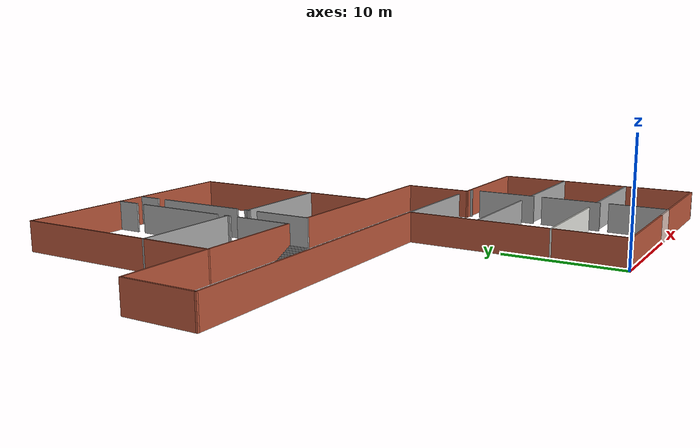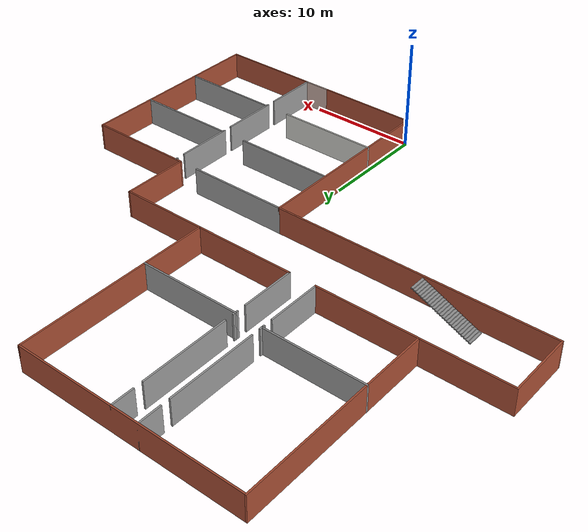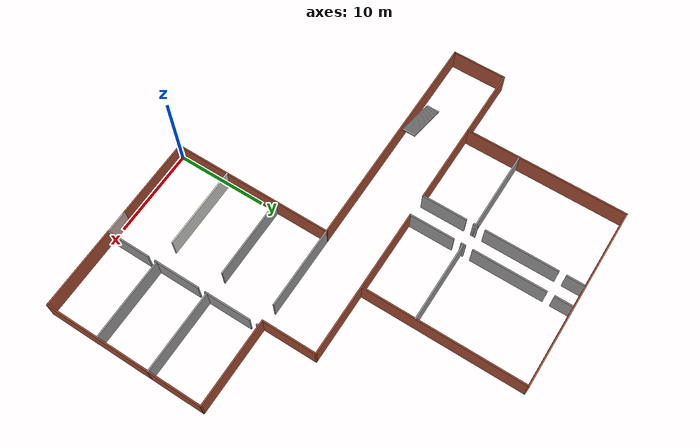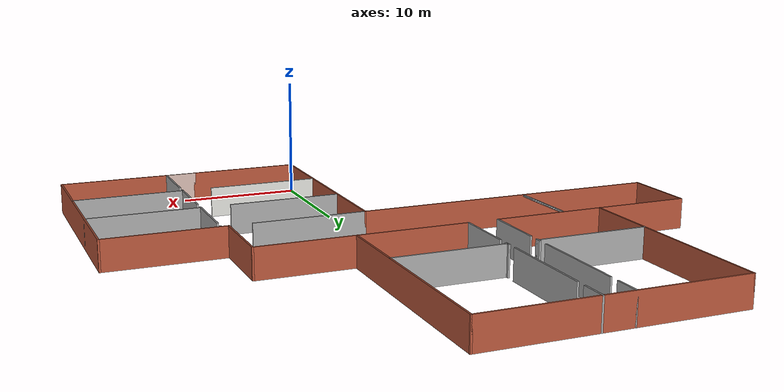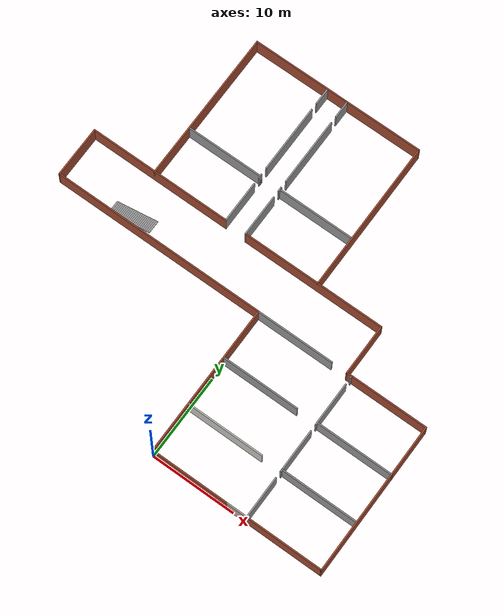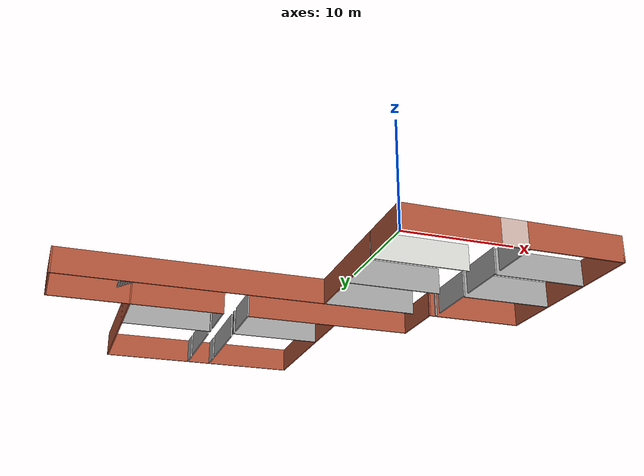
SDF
<?xml version='1.0'?>
<sdf version='1.6'>
  <model name='mrdc_empty'>
    <pose frame=''>-2.35 21 0 0 -0 0</pose>
    <link name='Stairs_2'>
      <visual name='Stairs_2_Visual_0'>
        <pose frame=''>-16.9146 -2 0.05 0 -0 1.5708</pose>
        <geometry>
          <box>
            <size>1.5 0.2148 0.1</size>
          </box>
        </geometry>
        <material>
          <script>
            <uri>file://media/materials/scripts/gazebo.material</uri>
            <name>Gazebo/Grey</name>
          </script>
          <ambient>1 1 1 1</ambient>
        </material>
        <meta>
          <layer>0</layer>
        </meta>
      </visual>
      <collision name='Stairs_2_Collision_0'>
        <geometry>
          <box>
            <size>1.5 0.2148 0.1</size>
          </box>
        </geometry>
        <pose frame=''>-16.9146 -2 0.05 0 -0 1.5708</pose>
      </collision>
      <visual name='Stairs_2_Visual_1'>
        <pose frame=''>-16.6998 -2 0.15 0 -0 1.5708</pose>
        <geometry>
          <box>
            <size>1.5 0.2148 0.1</size>
          </box>
        </geometry>
        <material>
          <script>
            <uri>file://media/materials/scripts/gazebo.material</uri>
            <name>Gazebo/Grey</name>
          </script>
          <ambient>1 1 1 1</ambient>
        </material>
        <meta>
          <layer>0</layer>
        </meta>
      </visual>
      <collision name='Stairs_2_Collision_1'>
        <geometry>
          <box>
            <size>1.5 0.2148 0.1</size>
          </box>
        </geometry>
        <pose frame=''>-16.6998 -2 0.15 0 -0 1.5708</pose>
      </collision>
      <visual name='Stairs_2_Visual_2'>
        <pose frame=''>-16.485 -2 0.25 0 -0 1.5708</pose>
        <geometry>
          <box>
            <size>1.5 0.2148 0.1</size>
          </box>
        </geometry>
        <material>
          <script>
            <uri>file://media/materials/scripts/gazebo.material</uri>
            <name>Gazebo/Grey</name>
          </script>
          <ambient>1 1 1 1</ambient>
        </material>
        <meta>
          <layer>0</layer>
        </meta>
      </visual>
      <collision name='Stairs_2_Collision_2'>
        <geometry>
          <box>
            <size>1.5 0.2148 0.1</size>
          </box>
        </geometry>
        <pose frame=''>-16.485 -2 0.25 0 -0 1.5708</pose>
      </collision>
      <visual name='Stairs_2_Visual_3'>
        <pose frame=''>-16.2702 -2 0.35 0 -0 1.5708</pose>
        <geometry>
          <box>
            <size>1.5 0.2148 0.1</size>
          </box>
        </geometry>
        <material>
          <script>
            <uri>file://media/materials/scripts/gazebo.material</uri>
            <name>Gazebo/Grey</name>
          </script>
          <ambient>1 1 1 1</ambient>
        </material>
        <meta>
          <layer>0</layer>
        </meta>
      </visual>
      <collision name='Stairs_2_Collision_3'>
        <geometry>
          <box>
            <size>1.5 0.2148 0.1</size>
          </box>
        </geometry>
        <pose frame=''>-16.2702 -2 0.35 0 -0 1.5708</pose>
      </collision>
      <visual name='Stairs_2_Visual_4'>
        <pose frame=''>-16.0554 -2 0.45 0 -0 1.5708</pose>
        <geometry>
          <box>
            <size>1.5 0.2148 0.1</size>
          </box>
        </geometry>
        <material>
          <script>
            <uri>file://media/materials/scripts/gazebo.material</uri>
            <name>Gazebo/Grey</name>
          </script>
          <ambient>1 1 1 1</ambient>
        </material>
        <meta>
          <layer>0</layer>
        </meta>
      </visual>
      <collision name='Stairs_2_Collision_4'>
        <geometry>
          <box>
            <size>1.5 0.2148 0.1</size>
          </box>
        </geometry>
        <pose frame=''>-16.0554 -2 0.45 0 -0 1.5708</pose>
      </collision>
      <visual name='Stairs_2_Visual_5'>
        <pose frame=''>-15.8406 -2 0.55 0 -0 1.5708</pose>
        <geometry>
          <box>
            <size>1.5 0.2148 0.1</size>
          </box>
        </geometry>
        <material>
          <script>
            <uri>file://media/materials/scripts/gazebo.material</uri>
            <name>Gazebo/Grey</name>
          </script>
          <ambient>1 1 1 1</ambient>
        </material>
        <meta>
          <layer>0</layer>
        </meta>
      </visual>
      <collision name='Stairs_2_Collision_5'>
        <geometry>
          <box>
            <size>1.5 0.2148 0.1</size>
          </box>
        </geometry>
        <pose frame=''>-15.8406 -2 0.55 0 -0 1.5708</pose>
      </collision>
      <visual name='Stairs_2_Visual_6'>
        <pose frame=''>-15.6258 -2 0.65 0 -0 1.5708</pose>
        <geometry>
          <box>
            <size>1.5 0.2148 0.1</size>
          </box>
        </geometry>
        <material>
          <script>
            <uri>file://media/materials/scripts/gazebo.material</uri>
            <name>Gazebo/Grey</name>
          </script>
          <ambient>1 1 1 1</ambient>
        </material>
        <meta>
          <layer>0</layer>
        </meta>
      </visual>
      <collision name='Stairs_2_Collision_6'>
        <geometry>
          <box>
            <size>1.5 0.2148 0.1</size>
          </box>
        </geometry>
        <pose frame=''>-15.6258 -2 0.65 0 -0 1.5708</pose>
      </collision>
      <visual name='Stairs_2_Visual_7'>
        <pose frame=''>-15.411 -2 0.75 0 -0 1.5708</pose>
        <geometry>
          <box>
            <size>1.5 0.2148 0.1</size>
          </box>
        </geometry>
        <material>
          <script>
            <uri>file://media/materials/scripts/gazebo.material</uri>
            <name>Gazebo/Grey</name>
          </script>
          <ambient>1 1 1 1</ambient>
        </material>
        <meta>
          <layer>0</layer>
        </meta>
      </visual>
      <collision name='Stairs_2_Collision_7'>
        <geometry>
          <box>
            <size>1.5 0.2148 0.1</size>
          </box>
        </geometry>
        <pose frame=''>-15.411 -2 0.75 0 -0 1.5708</pose>
      </collision>
      <visual name='Stairs_2_Visual_8'>
        <pose frame=''>-15.1962 -2 0.85 0 -0 1.5708</pose>
        <geometry>
          <box>
            <size>1.5 0.2148 0.1</size>
          </box>
        </geometry>
        <material>
          <script>
            <uri>file://media/materials/scripts/gazebo.material</uri>
            <name>Gazebo/Grey</name>
          </script>
          <ambient>1 1 1 1</ambient>
        </material>
        <meta>
          <layer>0</layer>
        </meta>
      </visual>
      <collision name='Stairs_2_Collision_8'>
        <geometry>
          <box>
            <size>1.5 0.2148 0.1</size>
          </box>
        </geometry>
        <pose frame=''>-15.1962 -2 0.85 0 -0 1.5708</pose>
      </collision>
      <visual name='Stairs_2_Visual_9'>
        <pose frame=''>-14.9814 -2 0.95 0 -0 1.5708</pose>
        <geometry>
          <box>
            <size>1.5 0.2148 0.1</size>
          </box>
        </geometry>
        <material>
          <script>
            <uri>file://media/materials/scripts/gazebo.material</uri>
            <name>Gazebo/Grey</name>
          </script>
          <ambient>1 1 1 1</ambient>
        </material>
        <meta>
          <layer>0</layer>
        </meta>
      </visual>
      <collision name='Stairs_2_Collision_9'>
        <geometry>
          <box>
            <size>1.5 0.2148 0.1</size>
          </box>
        </geometry>
        <pose frame=''>-14.9814 -2 0.95 0 -0 1.5708</pose>
      </collision>
      <visual name='Stairs_2_Visual_10'>
        <pose frame=''>-14.7666 -2 1.05 0 -0 1.5708</pose>
        <geometry>
          <box>
            <size>1.5 0.2148 0.1</size>
          </box>
        </geometry>
        <material>
          <script>
            <uri>file://media/materials/scripts/gazebo.material</uri>
            <name>Gazebo/Grey</name>
          </script>
          <ambient>1 1 1 1</ambient>
        </material>
        <meta>
          <layer>0</layer>
        </meta>
      </visual>
      <collision name='Stairs_2_Collision_10'>
        <geometry>
          <box>
            <size>1.5 0.2148 0.1</size>
          </box>
        </geometry>
        <pose frame=''>-14.7666 -2 1.05 0 -0 1.5708</pose>
      </collision>
      <visual name='Stairs_2_Visual_11'>
        <pose frame=''>-14.5518 -2 1.15 0 -0 1.5708</pose>
        <geometry>
          <box>
            <size>1.5 0.2148 0.1</size>
          </box>
        </geometry>
        <material>
          <script>
            <uri>file://media/materials/scripts/gazebo.material</uri>
            <name>Gazebo/Grey</name>
          </script>
          <ambient>1 1 1 1</ambient>
        </material>
        <meta>
          <layer>0</layer>
        </meta>
      </visual>
      <collision name='Stairs_2_Collision_11'>
        <geometry>
          <box>
            <size>1.5 0.2148 0.1</size>
          </box>
        </geometry>
        <pose frame=''>-14.5518 -2 1.15 0 -0 1.5708</pose>
      </collision>
      <visual name='Stairs_2_Visual_12'>
        <pose frame=''>-14.337 -2 1.25 0 -0 1.5708</pose>
        <geometry>
          <box>
            <size>1.5 0.2148 0.1</size>
          </box>
        </geometry>
        <material>
          <script>
            <uri>file://media/materials/scripts/gazebo.material</uri>
            <name>Gazebo/Grey</name>
          </script>
          <ambient>1 1 1 1</ambient>
        </material>
        <meta>
          <layer>0</layer>
        </meta>
      </visual>
      <collision name='Stairs_2_Collision_12'>
        <geometry>
          <box>
            <size>1.5 0.2148 0.1</size>
          </box>
        </geometry>
        <pose frame=''>-14.337 -2 1.25 0 -0 1.5708</pose>
      </collision>
      <visual name='Stairs_2_Visual_13'>
        <pose frame=''>-14.1222 -2 1.35 0 -0 1.5708</pose>
        <geometry>
          <box>
            <size>1.5 0.2148 0.1</size>
          </box>
        </geometry>
        <material>
          <script>
            <uri>file://media/materials/scripts/gazebo.material</uri>
            <name>Gazebo/Grey</name>
          </script>
          <ambient>1 1 1 1</ambient>
        </material>
        <meta>
          <layer>0</layer>
        </meta>
      </visual>
      <collision name='Stairs_2_Collision_13'>
        <geometry>
          <box>
            <size>1.5 0.2148 0.1</size>
          </box>
        </geometry>
        <pose frame=''>-14.1222 -2 1.35 0 -0 1.5708</pose>
      </collision>
      <visual name='Stairs_2_Visual_14'>
        <pose frame=''>-13.9074 -2 1.45 0 -0 1.5708</pose>
        <geometry>
          <box>
            <size>1.5 0.2148 0.1</size>
          </box>
        </geometry>
        <material>
          <script>
            <uri>file://media/materials/scripts/gazebo.material</uri>
            <name>Gazebo/Grey</name>
          </script>
          <ambient>1 1 1 1</ambient>
        </material>
        <meta>
          <layer>0</layer>
        </meta>
      </visual>
      <collision name='Stairs_2_Collision_14'>
        <geometry>
          <box>
            <size>1.5 0.2148 0.1</size>
          </box>
        </geometry>
        <pose frame=''>-13.9074 -2 1.45 0 -0 1.5708</pose>
      </collision>
      <visual name='Stairs_2_Visual_15'>
        <pose frame=''>-13.6926 -2 1.55 0 -0 1.5708</pose>
        <geometry>
          <box>
            <size>1.5 0.2148 0.1</size>
          </box>
        </geometry>
        <material>
          <script>
            <uri>file://media/materials/scripts/gazebo.material</uri>
            <name>Gazebo/Grey</name>
          </script>
          <ambient>1 1 1 1</ambient>
        </material>
        <meta>
          <layer>0</layer>
        </meta>
      </visual>
      <collision name='Stairs_2_Collision_15'>
        <geometry>
          <box>
            <size>1.5 0.2148 0.1</size>
          </box>
        </geometry>
        <pose frame=''>-13.6926 -2 1.55 0 -0 1.5708</pose>
      </collision>
      <visual name='Stairs_2_Visual_16'>
        <pose frame=''>-13.4778 -2 1.65 0 -0 1.5708</pose>
        <geometry>
          <box>
            <size>1.5 0.2148 0.1</size>
          </box>
        </geometry>
        <material>
          <script>
            <uri>file://media/materials/scripts/gazebo.material</uri>
            <name>Gazebo/Grey</name>
          </script>
          <ambient>1 1 1 1</ambient>
        </material>
        <meta>
          <layer>0</layer>
        </meta>
      </visual>
      <collision name='Stairs_2_Collision_16'>
        <geometry>
          <box>
            <size>1.5 0.2148 0.1</size>
          </box>
        </geometry>
        <pose frame=''>-13.4778 -2 1.65 0 -0 1.5708</pose>
      </collision>
      <visual name='Stairs_2_Visual_17'>
        <pose frame=''>-13.263 -2 1.75 0 -0 1.5708</pose>
        <geometry>
          <box>
            <size>1.5 0.2148 0.1</size>
          </box>
        </geometry>
        <material>
          <script>
            <uri>file://media/materials/scripts/gazebo.material</uri>
            <name>Gazebo/Grey</name>
          </script>
          <ambient>1 1 1 1</ambient>
        </material>
        <meta>
          <layer>0</layer>
        </meta>
      </visual>
      <collision name='Stairs_2_Collision_17'>
        <geometry>
          <box>
            <size>1.5 0.2148 0.1</size>
          </box>
        </geometry>
        <pose frame=''>-13.263 -2 1.75 0 -0 1.5708</pose>
      </collision>
      <visual name='Stairs_2_Visual_18'>
        <pose frame=''>-13.0482 -2 1.85 0 -0 1.5708</pose>
        <geometry>
          <box>
            <size>1.5 0.2148 0.1</size>
          </box>
        </geometry>
        <material>
          <script>
            <uri>file://media/materials/scripts/gazebo.material</uri>
            <name>Gazebo/Grey</name>
          </script>
          <ambient>1 1 1 1</ambient>
        </material>
        <meta>
          <layer>0</layer>
        </meta>
      </visual>
      <collision name='Stairs_2_Collision_18'>
        <geometry>
          <box>
            <size>1.5 0.2148 0.1</size>
          </box>
        </geometry>
        <pose frame=''>-13.0482 -2 1.85 0 -0 1.5708</pose>
      </collision>
      <visual name='Stairs_2_Visual_19'>
        <pose frame=''>-12.8334 -2 1.95 0 -0 1.5708</pose>
        <geometry>
          <box>
            <size>1.5 0.2148 0.1</size>
          </box>
        </geometry>
        <material>
          <script>
            <uri>file://media/materials/scripts/gazebo.material</uri>
            <name>Gazebo/Grey</name>
          </script>
          <ambient>1 1 1 1</ambient>
        </material>
        <meta>
          <layer>0</layer>
        </meta>
      </visual>
      <collision name='Stairs_2_Collision_19'>
        <geometry>
          <box>
            <size>1.5 0.2148 0.1</size>
          </box>
        </geometry>
        <pose frame=''>-12.8334 -2 1.95 0 -0 1.5708</pose>
      </collision>
      <visual name='Stairs_2_Visual_20'>
        <pose frame=''>-12.6186 -2 2.05 0 -0 1.5708</pose>
        <geometry>
          <box>
            <size>1.5 0.2148 0.1</size>
          </box>
        </geometry>
        <material>
          <script>
            <uri>file://media/materials/scripts/gazebo.material</uri>
            <name>Gazebo/Grey</name>
          </script>
          <ambient>1 1 1 1</ambient>
        </material>
        <meta>
          <layer>0</layer>
        </meta>
      </visual>
      <collision name='Stairs_2_Collision_20'>
        <geometry>
          <box>
            <size>1.5 0.2148 0.1</size>
          </box>
        </geometry>
        <pose frame=''>-12.6186 -2 2.05 0 -0 1.5708</pose>
      </collision>
      <visual name='Stairs_2_Visual_21'>
        <pose frame=''>-12.4038 -2 2.15 0 -0 1.5708</pose>
        <geometry>
          <box>
            <size>1.5 0.2148 0.1</size>
          </box>
        </geometry>
        <material>
          <script>
            <uri>file://media/materials/scripts/gazebo.material</uri>
            <name>Gazebo/Grey</name>
          </script>
          <ambient>1 1 1 1</ambient>
        </material>
        <meta>
          <layer>0</layer>
        </meta>
      </visual>
      <collision name='Stairs_2_Collision_21'>
        <geometry>
          <box>
            <size>1.5 0.2148 0.1</size>
          </box>
        </geometry>
        <pose frame=''>-12.4038 -2 2.15 0 -0 1.5708</pose>
      </collision>
      <visual name='Stairs_2_Visual_22'>
        <pose frame=''>-12.189 -2 2.25 0 -0 1.5708</pose>
        <geometry>
          <box>
            <size>1.5 0.2148 0.1</size>
          </box>
        </geometry>
        <material>
          <script>
            <uri>file://media/materials/scripts/gazebo.material</uri>
            <name>Gazebo/Grey</name>
          </script>
          <ambient>1 1 1 1</ambient>
        </material>
        <meta>
          <layer>0</layer>
        </meta>
      </visual>
      <collision name='Stairs_2_Collision_22'>
        <geometry>
          <box>
            <size>1.5 0.2148 0.1</size>
          </box>
        </geometry>
        <pose frame=''>-12.189 -2 2.25 0 -0 1.5708</pose>
      </collision>
      <visual name='Stairs_2_Visual_23'>
        <pose frame=''>-11.9742 -2 2.35 0 -0 1.5708</pose>
        <geometry>
          <box>
            <size>1.5 0.2148 0.1</size>
          </box>
        </geometry>
        <material>
          <script>
            <uri>file://media/materials/scripts/gazebo.material</uri>
            <name>Gazebo/Grey</name>
          </script>
          <ambient>1 1 1 1</ambient>
        </material>
        <meta>
          <layer>0</layer>
        </meta>
      </visual>
      <collision name='Stairs_2_Collision_23'>
        <geometry>
          <box>
            <size>1.5 0.2148 0.1</size>
          </box>
        </geometry>
        <pose frame=''>-11.9742 -2 2.35 0 -0 1.5708</pose>
      </collision>
      <visual name='Stairs_2_Visual_24'>
        <pose frame=''>-11.7594 -2 2.45 0 -0 1.5708</pose>
        <geometry>
          <box>
            <size>1.5 0.2148 0.1</size>
          </box>
        </geometry>
        <material>
          <script>
            <uri>file://media/materials/scripts/gazebo.material</uri>
            <name>Gazebo/Grey</name>
          </script>
          <ambient>1 1 1 1</ambient>
        </material>
        <meta>
          <layer>0</layer>
        </meta>
      </visual>
      <collision name='Stairs_2_Collision_24'>
        <geometry>
          <box>
            <size>1.5 0.2148 0.1</size>
          </box>
        </geometry>
        <pose frame=''>-11.7594 -2 2.45 0 -0 1.5708</pose>
      </collision>
    </link>
    <link name='Wall_11'>
      <collision name='Wall_11_Collision'>
        <geometry>
          <box>
            <size>18.15 0.15 2.5</size>
          </box>
        </geometry>
        <pose frame=''>0 0 1.25 0 -0 0</pose>
      </collision>
      <visual name='Wall_11_Visual'>
        <pose frame=''>0 0 1.25 0 -0 0</pose>
        <geometry>
          <box>
            <size>18.15 0.15 2.5</size>
          </box>
        </geometry>
        <material>
          <script>
            <uri>file://media/materials/scripts/gazebo.material</uri>
            <name>Gazebo/Bricks</name>
          </script>
          <ambient>1 1 1 1</ambient>
        </material>
        <meta>
          <layer>0</layer>
        </meta>
      </visual>
      <pose frame=''>23.05 -12 0 0 -0 1.5708</pose>
    </link>
    <link name='Wall_13'>
      <collision name='Wall_13_Collision'>
        <geometry>
          <box>
            <size>9.85 0.15 2.5</size>
          </box>
        </geometry>
        <pose frame=''>0 0 1.25 0 -0 0</pose>
      </collision>
      <visual name='Wall_13_Visual'>
        <pose frame=''>0 0 1.25 0 -0 0</pose>
        <geometry>
          <box>
            <size>9.85 0.15 2.5</size>
          </box>
        </geometry>
        <material>
          <script>
            <uri>file://media/materials/scripts/gazebo.material</uri>
            <name>Gazebo/Bricks</name>
          </script>
          <ambient>1 1 1 1</ambient>
        </material>
        <meta>
          <layer>0</layer>
        </meta>
      </visual>
      <pose frame=''>18.2 -3 0 0 -0 3.14159</pose>
    </link>
    <link name='Wall_17'>
      <collision name='Wall_17_Collision'>
        <geometry>
          <box>
            <size>9.25 0.15 2.5</size>
          </box>
        </geometry>
        <pose frame=''>0 0 1.25 0 -0 0</pose>
      </collision>
      <visual name='Wall_17_Visual'>
        <pose frame=''>0 0 1.25 0 -0 0</pose>
        <geometry>
          <box>
            <size>9.25 0.15 2.5</size>
          </box>
        </geometry>
        <material>
          <script>
            <uri>file://media/materials/scripts/gazebo.material</uri>
            <name>Gazebo/CeilingTiled</name>
          </script>
          <ambient>1 1 1 1</ambient>
        </material>
        <meta>
          <layer>0</layer>
        </meta>
      </visual>
      <pose frame=''>6.9 -15 0 0 -0 0</pose>
    </link>
    <link name='Wall_19'>
      <collision name='Wall_19_Collision'>
        <geometry>
          <box>
            <size>9.25 0.15 2.5</size>
          </box>
        </geometry>
        <pose frame=''>0 0 1.25 0 -0 0</pose>
      </collision>
      <visual name='Wall_19_Visual'>
        <pose frame=''>0 0 1.25 0 -0 0</pose>
        <geometry>
          <box>
            <size>9.25 0.15 2.5</size>
          </box>
        </geometry>
        <material>
          <script>
            <uri>file://media/materials/scripts/gazebo.material</uri>
            <name>Gazebo/Grey</name>
          </script>
          <ambient>1 1 1 1</ambient>
        </material>
        <meta>
          <layer>0</layer>
        </meta>
      </visual>
      <pose frame=''>18.5 -15 0 0 -0 0</pose>
    </link>
    <link name='Wall_2'>
      <collision name='Wall_2_Collision'>
        <geometry>
          <box>
            <size>9.25 0.15 2.5</size>
          </box>
        </geometry>
        <pose frame=''>0 0 1.25 0 -0 0</pose>
      </collision>
      <visual name='Wall_2_Visual'>
        <pose frame=''>0 0 1.25 0 -0 0</pose>
        <geometry>
          <box>
            <size>9.25 0.15 2.5</size>
          </box>
        </geometry>
        <material>
          <script>
            <uri>file://media/materials/scripts/gazebo.material</uri>
            <name>Gazebo/Bricks</name>
          </script>
          <ambient>1 1 1 1</ambient>
        </material>
        <meta>
          <layer>0</layer>
        </meta>
      </visual>
      <pose frame=''>6.9 -21 0 0 -0 0</pose>
    </link>
    <link name='Wall_21'>
      <collision name='Wall_21_Collision'>
        <geometry>
          <box>
            <size>9.25 0.15 2.5</size>
          </box>
        </geometry>
        <pose frame=''>0 0 1.25 0 -0 0</pose>
      </collision>
      <visual name='Wall_21_Visual'>
        <pose frame=''>0 0 1.25 0 -0 0</pose>
        <geometry>
          <box>
            <size>9.25 0.15 2.5</size>
          </box>
        </geometry>
        <material>
          <script>
            <uri>file://media/materials/scripts/gazebo.material</uri>
            <name>Gazebo/Grey</name>
          </script>
          <ambient>1 1 1 1</ambient>
        </material>
        <meta>
          <layer>0</layer>
        </meta>
      </visual>
      <pose frame=''>6.9 -9 0 0 -0 0</pose>
    </link>
    <link name='Wall_23'>
      <collision name='Wall_23_Collision'>
        <geometry>
          <box>
            <size>9.25 0.15 2.5</size>
          </box>
        </geometry>
        <pose frame=''>0 0 1.25 0 -0 0</pose>
      </collision>
      <visual name='Wall_23_Visual'>
        <pose frame=''>0 0 1.25 0 -0 0</pose>
        <geometry>
          <box>
            <size>9.25 0.15 2.5</size>
          </box>
        </geometry>
        <material>
          <script>
            <uri>file://media/materials/scripts/gazebo.material</uri>
            <name>Gazebo/Grey</name>
          </script>
          <ambient>1 1 1 1</ambient>
        </material>
        <meta>
          <layer>0</layer>
        </meta>
      </visual>
      <pose frame=''>18.5 -9 0 0 -0 0</pose>
    </link>
    <link name='Wall_27'>
      <collision name='Wall_27_Collision'>
        <geometry>
          <box>
            <size>0.35 0.15 2.5</size>
          </box>
        </geometry>
        <pose frame=''>0 0 1.25 0 -0 0</pose>
      </collision>
      <visual name='Wall_27_Visual'>
        <pose frame=''>0 0 1.25 0 -0 0</pose>
        <geometry>
          <box>
            <size>0.35 0.15 2.5</size>
          </box>
        </geometry>
        <material>
          <script>
            <uri>file://media/materials/scripts/gazebo.material</uri>
            <name>Gazebo/Grey</name>
          </script>
          <ambient>1 1 1 1</ambient>
        </material>
        <meta>
          <layer>0</layer>
        </meta>
      </visual>
      <pose frame=''>13.95 -3.1 0 0 -0 -1.5708</pose>
    </link>
    <link name='Wall_29'>
      <collision name='Wall_29_Collision'>
        <geometry>
          <box>
            <size>5.25 0.15 2.5</size>
          </box>
        </geometry>
        <pose frame=''>0 0 1.25 0 -0 0</pose>
      </collision>
      <visual name='Wall_29_Visual'>
        <pose frame=''>0 0 1.25 0 -0 0</pose>
        <geometry>
          <box>
            <size>5.25 0.15 2.5</size>
          </box>
        </geometry>
        <material>
          <script>
            <uri>file://media/materials/scripts/gazebo.material</uri>
            <name>Gazebo/Grey</name>
          </script>
          <ambient>1 1 1 1</ambient>
        </material>
        <meta>
          <layer>0</layer>
        </meta>
      </visual>
      <pose frame=''>13.95 -6.65 0 0 -0 -1.5708</pose>
    </link>
    <link name='Wall_31'>
      <collision name='Wall_31_Collision'>
        <geometry>
          <box>
            <size>5.25 0.15 2.5</size>
          </box>
        </geometry>
        <pose frame=''>0 0 1.25 0 -0 0</pose>
      </collision>
      <visual name='Wall_31_Visual'>
        <pose frame=''>0 0 1.25 0 -0 0</pose>
        <geometry>
          <box>
            <size>5.25 0.15 2.5</size>
          </box>
        </geometry>
        <material>
          <script>
            <uri>file://media/materials/scripts/gazebo.material</uri>
            <name>Gazebo/Grey</name>
          </script>
          <ambient>1 1 1 1</ambient>
        </material>
        <meta>
          <layer>0</layer>
        </meta>
      </visual>
      <pose frame=''>13.95 -12.65 0 0 -0 -1.5708</pose>
    </link>
    <link name='Wall_33'>
      <collision name='Wall_33_Collision'>
        <geometry>
          <box>
            <size>5.05 0.15 2.5</size>
          </box>
        </geometry>
        <pose frame=''>0 0 1.25 0 -0 0</pose>
      </collision>
      <visual name='Wall_33_Visual'>
        <pose frame=''>0 0 1.25 0 -0 0</pose>
        <geometry>
          <box>
            <size>5.05 0.15 2.5</size>
          </box>
        </geometry>
        <material>
          <script>
            <uri>file://media/materials/scripts/gazebo.material</uri>
            <name>Gazebo/Grey</name>
          </script>
          <ambient>1 1 1 1</ambient>
        </material>
        <meta>
          <layer>0</layer>
        </meta>
      </visual>
      <pose frame=''>13.95 -18.55 0 0 -0 1.5708</pose>
    </link>
    <link name='Wall_37'>
      <collision name='Wall_37_Collision'>
        <geometry>
          <box>
            <size>9.25 0.15 2.5</size>
          </box>
        </geometry>
        <pose frame=''>0 0 1.25 0 -0 0</pose>
      </collision>
      <visual name='Wall_37_Visual'>
        <pose frame=''>0 0 1.25 0 -0 0</pose>
        <geometry>
          <box>
            <size>9.25 0.15 2.5</size>
          </box>
        </geometry>
        <material>
          <script>
            <uri>file://media/materials/scripts/gazebo.material</uri>
            <name>Gazebo/Grey</name>
          </script>
          <ambient>1 1 1 1</ambient>
        </material>
        <meta>
          <layer>0</layer>
        </meta>
      </visual>
      <pose frame=''>6.9 -3 0 0 -0 0</pose>
    </link>
    <link name='Wall_4'>
      <collision name='Wall_4_Collision'>
        <geometry>
          <box>
            <size>2.65 0.15 2.5</size>
          </box>
        </geometry>
        <pose frame=''>0 0 1.25 0 -0 0</pose>
      </collision>
      <visual name='Wall_4_Visual'>
        <pose frame=''>0 0 1.25 0 -0 0</pose>
        <geometry>
          <box>
            <size>2.65 0.15 2.5</size>
          </box>
        </geometry>
        <material>
          <script>
            <uri>file://media/materials/scripts/gazebo.material</uri>
            <name>Gazebo/Grey</name>
          </script>
          <ambient>0.760784 0.662745 0.627451 1</ambient>
        </material>
        <meta>
          <layer>0</layer>
        </meta>
      </visual>
      <pose frame=''>12.7 -21 0 0 -0 0</pose>
    </link>
    <link name='Wall_41'>
      <collision name='Wall_41_Collision'>
        <geometry>
          <box>
            <size>6.15 0.15 2.5</size>
          </box>
        </geometry>
        <pose frame=''>0 0 1.25 0 -0 0</pose>
      </collision>
      <visual name='Wall_41_Visual'>
        <pose frame=''>0 0 1.25 0 -0 0</pose>
        <geometry>
          <box>
            <size>6.15 0.15 2.5</size>
          </box>
        </geometry>
        <material>
          <script>
            <uri>file://media/materials/scripts/gazebo.material</uri>
            <name>Gazebo/Bricks</name>
          </script>
          <ambient>1 1 1 1</ambient>
        </material>
        <meta>
          <layer>0</layer>
        </meta>
      </visual>
      <pose frame=''>13.35 0 0 0 -0 1.5708</pose>
    </link>
    <link name='Wall_43'>
      <collision name='Wall_43_Collision'>
        <geometry>
          <box>
            <size>25.55 0.15 2.5</size>
          </box>
        </geometry>
        <pose frame=''>0 0 1.25 0 -0 0</pose>
      </collision>
      <visual name='Wall_43_Visual'>
        <pose frame=''>0 0 1.25 0 -0 0</pose>
        <geometry>
          <box>
            <size>25.55 0.15 2.5</size>
          </box>
        </geometry>
        <material>
          <script>
            <uri>file://media/materials/scripts/gazebo.material</uri>
            <name>Gazebo/Bricks</name>
          </script>
          <ambient>1 1 1 1</ambient>
        </material>
        <meta>
          <layer>0</layer>
        </meta>
      </visual>
      <pose frame=''>-10.35 -3 0 0 -0 3.14159</pose>
    </link>
    <link name='Wall_45'>
      <collision name='Wall_45_Collision'>
        <geometry>
          <box>
            <size>17.15 0.15 2.5</size>
          </box>
        </geometry>
        <pose frame=''>0 0 1.25 0 -0 0</pose>
      </collision>
      <visual name='Wall_45_Visual'>
        <pose frame=''>0 0 1.25 0 -0 0</pose>
        <geometry>
          <box>
            <size>17.15 0.15 2.5</size>
          </box>
        </geometry>
        <material>
          <script>
            <uri>file://media/materials/scripts/gazebo.material</uri>
            <name>Gazebo/Bricks</name>
          </script>
          <ambient>1 1 1 1</ambient>
        </material>
        <meta>
          <layer>0</layer>
        </meta>
      </visual>
      <pose frame=''>4.85 3 0 0 -0 3.14159</pose>
    </link>
    <link name='Wall_47'>
      <collision name='Wall_47_Collision'>
        <geometry>
          <box>
            <size>18.15 0.15 2.5</size>
          </box>
        </geometry>
        <pose frame=''>0 0 1.25 0 -0 0</pose>
      </collision>
      <visual name='Wall_47_Visual'>
        <pose frame=''>0 0 1.25 0 -0 0</pose>
        <geometry>
          <box>
            <size>18.15 0.15 2.5</size>
          </box>
        </geometry>
        <material>
          <script>
            <uri>file://media/materials/scripts/gazebo.material</uri>
            <name>Gazebo/Bricks</name>
          </script>
          <ambient>1 1 1 1</ambient>
        </material>
        <meta>
          <layer>0</layer>
        </meta>
      </visual>
      <pose frame=''>5.45 12 0 0 -0 1.5708</pose>
    </link>
    <link name='Wall_49'>
      <collision name='Wall_49_Collision'>
        <geometry>
          <box>
            <size>17.05 0.15 2.5</size>
          </box>
        </geometry>
        <pose frame=''>0 0 1.25 0 -0 0</pose>
      </collision>
      <visual name='Wall_49_Visual'>
        <pose frame=''>0 0 1.25 0 -0 0</pose>
        <geometry>
          <box>
            <size>17.05 0.15 2.5</size>
          </box>
        </geometry>
        <material>
          <script>
            <uri>file://media/materials/scripts/gazebo.material</uri>
            <name>Gazebo/Bricks</name>
          </script>
          <ambient>1 1 1 1</ambient>
        </material>
        <meta>
          <layer>0</layer>
        </meta>
      </visual>
      <pose frame=''>-14.6 3 0 0 -0 3.14159</pose>
    </link>
    <link name='Wall_51'>
      <collision name='Wall_51_Collision'>
        <geometry>
          <box>
            <size>18.15 0.15 2.5</size>
          </box>
        </geometry>
        <pose frame=''>0 0 1.25 0 -0 0</pose>
      </collision>
      <visual name='Wall_51_Visual'>
        <pose frame=''>0 0 1.25 0 -0 0</pose>
        <geometry>
          <box>
            <size>18.15 0.15 2.5</size>
          </box>
        </geometry>
        <material>
          <script>
            <uri>file://media/materials/scripts/gazebo.material</uri>
            <name>Gazebo/Bricks</name>
          </script>
          <ambient>1 1 1 1</ambient>
        </material>
        <meta>
          <layer>0</layer>
        </meta>
      </visual>
      <pose frame=''>-15.25 12 0 0 -0 1.5708</pose>
    </link>
    <link name='Wall_53'>
      <collision name='Wall_53_Collision'>
        <geometry>
          <box>
            <size>20.85 0.15 2.5</size>
          </box>
        </geometry>
        <pose frame=''>0 0 1.25 0 -0 0</pose>
      </collision>
      <visual name='Wall_53_Visual'>
        <pose frame=''>0 0 1.25 0 -0 0</pose>
        <geometry>
          <box>
            <size>20.85 0.15 2.5</size>
          </box>
        </geometry>
        <material>
          <script>
            <uri>file://media/materials/scripts/gazebo.material</uri>
            <name>Gazebo/Bricks</name>
          </script>
          <ambient>1 1 1 1</ambient>
        </material>
        <meta>
          <layer>0</layer>
        </meta>
      </visual>
      <pose frame=''>-4.9 21 0 0 -0 0</pose>
    </link>
    <link name='Wall_55'>
      <collision name='Wall_55_Collision'>
        <geometry>
          <box>
            <size>9.25 0.15 2.5</size>
          </box>
        </geometry>
        <pose frame=''>0 0 1.25 0 -0 0</pose>
      </collision>
      <visual name='Wall_55_Visual'>
        <pose frame=''>0 0 1.25 0 -0 0</pose>
        <geometry>
          <box>
            <size>9.25 0.15 2.5</size>
          </box>
        </geometry>
        <material>
          <script>
            <uri>file://media/materials/scripts/gazebo.material</uri>
            <name>Gazebo/Grey</name>
          </script>
          <ambient>1 1 1 1</ambient>
        </material>
        <meta>
          <layer>0</layer>
        </meta>
      </visual>
      <pose frame=''>-10.7 9 0 0 -0 0</pose>
    </link>
    <link name='Wall_57'>
      <collision name='Wall_57_Collision'>
        <geometry>
          <box>
            <size>9.25 0.15 2.5</size>
          </box>
        </geometry>
        <pose frame=''>0 0 1.25 0 -0 0</pose>
      </collision>
      <visual name='Wall_57_Visual'>
        <pose frame=''>0 0 1.25 0 -0 0</pose>
        <geometry>
          <box>
            <size>9.25 0.15 2.5</size>
          </box>
        </geometry>
        <material>
          <script>
            <uri>file://media/materials/scripts/gazebo.material</uri>
            <name>Gazebo/Grey</name>
          </script>
          <ambient>1 1 1 1</ambient>
        </material>
        <meta>
          <layer>0</layer>
        </meta>
      </visual>
      <pose frame=''>0.899999 9 0 0 -0 0</pose>
    </link>
    <link name='Wall_59'>
      <collision name='Wall_59_Collision'>
        <geometry>
          <box>
            <size>5.05 0.15 2.5</size>
          </box>
        </geometry>
        <pose frame=''>0 0 1.25 0 -0 0</pose>
      </collision>
      <visual name='Wall_59_Visual'>
        <pose frame=''>0 0 1.25 0 -0 0</pose>
        <geometry>
          <box>
            <size>5.05 0.15 2.5</size>
          </box>
        </geometry>
        <material>
          <script>
            <uri>file://media/materials/scripts/gazebo.material</uri>
            <name>Gazebo/Grey</name>
          </script>
          <ambient>1 1 1 1</ambient>
        </material>
        <meta>
          <layer>0</layer>
        </meta>
      </visual>
      <pose frame=''>-3.65 5.45 0 0 -0 -1.5708</pose>
    </link>
    <link name='Wall_61'>
      <collision name='Wall_61_Collision'>
        <geometry>
          <box>
            <size>5.05 0.15 2.5</size>
          </box>
        </geometry>
        <pose frame=''>0 0 1.25 0 -0 0</pose>
      </collision>
      <visual name='Wall_61_Visual'>
        <pose frame=''>0 0 1.25 0 -0 0</pose>
        <geometry>
          <box>
            <size>5.05 0.15 2.5</size>
          </box>
        </geometry>
        <material>
          <script>
            <uri>file://media/materials/scripts/gazebo.material</uri>
            <name>Gazebo/Grey</name>
          </script>
          <ambient>1 1 1 1</ambient>
        </material>
        <meta>
          <layer>0</layer>
        </meta>
      </visual>
      <pose frame=''>-6.15 5.45 0 0 -0 1.5708</pose>
    </link>
    <link name='Wall_63'>
      <collision name='Wall_63_Collision'>
        <geometry>
          <box>
            <size>0.55 0.15 2.5</size>
          </box>
        </geometry>
        <pose frame=''>0 0 1.25 0 -0 0</pose>
      </collision>
      <visual name='Wall_63_Visual'>
        <pose frame=''>0 0 1.25 0 -0 0</pose>
        <geometry>
          <box>
            <size>0.55 0.15 2.5</size>
          </box>
        </geometry>
        <material>
          <script>
            <uri>file://media/materials/scripts/gazebo.material</uri>
            <name>Gazebo/Grey</name>
          </script>
          <ambient>1 1 1 1</ambient>
        </material>
        <meta>
          <layer>0</layer>
        </meta>
      </visual>
      <pose frame=''>-3.65 9 0 0 -0 1.5708</pose>
    </link>
    <link name='Wall_65'>
      <collision name='Wall_65_Collision'>
        <geometry>
          <box>
            <size>0.55 0.15 2.5</size>
          </box>
        </geometry>
        <pose frame=''>0 0 1.25 0 -0 0</pose>
      </collision>
      <visual name='Wall_65_Visual'>
        <pose frame=''>0 0 1.25 0 -0 0</pose>
        <geometry>
          <box>
            <size>0.55 0.15 2.5</size>
          </box>
        </geometry>
        <material>
          <script>
            <uri>file://media/materials/scripts/gazebo.material</uri>
            <name>Gazebo/Grey</name>
          </script>
          <ambient>1 1 1 1</ambient>
        </material>
        <meta>
          <layer>0</layer>
        </meta>
      </visual>
      <pose frame=''>-6.15 9 0 0 -0 1.5708</pose>
    </link>
    <link name='Wall_67'>
      <collision name='Wall_67_Collision'>
        <geometry>
          <box>
            <size>8.15 0.15 2.5</size>
          </box>
        </geometry>
        <pose frame=''>0 0 1.25 0 -0 0</pose>
      </collision>
      <visual name='Wall_67_Visual'>
        <pose frame=''>0 0 1.25 0 -0 0</pose>
        <geometry>
          <box>
            <size>8.15 0.15 2.5</size>
          </box>
        </geometry>
        <material>
          <script>
            <uri>file://media/materials/scripts/gazebo.material</uri>
            <name>Gazebo/Grey</name>
          </script>
          <ambient>1 1 1 1</ambient>
        </material>
        <meta>
          <layer>0</layer>
        </meta>
      </visual>
      <pose frame=''>-3.65 14.1 0 0 -0 1.5708</pose>
    </link>
    <link name='Wall_69'>
      <collision name='Wall_69_Collision'>
        <geometry>
          <box>
            <size>8.15 0.15 2.5</size>
          </box>
        </geometry>
        <pose frame=''>0 0 1.25 0 -0 0</pose>
      </collision>
      <visual name='Wall_69_Visual'>
        <pose frame=''>0 0 1.25 0 -0 0</pose>
        <geometry>
          <box>
            <size>8.15 0.15 2.5</size>
          </box>
        </geometry>
        <material>
          <script>
            <uri>file://media/materials/scripts/gazebo.material</uri>
            <name>Gazebo/Grey</name>
          </script>
          <ambient>1 1 1 1</ambient>
        </material>
        <meta>
          <layer>0</layer>
        </meta>
      </visual>
      <pose frame=''>-6.15 14.1 0 0 -0 1.5708</pose>
    </link>
    <link name='Wall_7'>
      <collision name='Wall_7_Collision'>
        <geometry>
          <box>
            <size>9.25 0.15 2.5</size>
          </box>
        </geometry>
        <pose frame=''>0 0 1.25 0 -0 0</pose>
      </collision>
      <visual name='Wall_7_Visual'>
        <pose frame=''>0 0 1.25 0 -0 0</pose>
        <geometry>
          <box>
            <size>9.25 0.15 2.5</size>
          </box>
        </geometry>
        <material>
          <script>
            <uri>file://media/materials/scripts/gazebo.material</uri>
            <name>Gazebo/Bricks</name>
          </script>
          <ambient>1 1 1 1</ambient>
        </material>
        <meta>
          <layer>0</layer>
        </meta>
      </visual>
      <pose frame=''>18.5 -21 0 0 -0 0</pose>
    </link>
    <link name='Wall_71'>
      <collision name='Wall_71_Collision'>
        <geometry>
          <box>
            <size>2.15 0.15 2.5</size>
          </box>
        </geometry>
        <pose frame=''>0 0 1.25 0 -0 0</pose>
      </collision>
      <visual name='Wall_71_Visual'>
        <pose frame=''>0 0 1.25 0 -0 0</pose>
        <geometry>
          <box>
            <size>2.15 0.15 2.5</size>
          </box>
        </geometry>
        <material>
          <script>
            <uri>file://media/materials/scripts/gazebo.material</uri>
            <name>Gazebo/Grey</name>
          </script>
          <ambient>1 1 1 1</ambient>
        </material>
        <meta>
          <layer>0</layer>
        </meta>
      </visual>
      <pose frame=''>-3.65 20 0 0 -0 1.5708</pose>
    </link>
    <link name='Wall_73'>
      <collision name='Wall_73_Collision'>
        <geometry>
          <box>
            <size>2.15 0.15 2.5</size>
          </box>
        </geometry>
        <pose frame=''>0 0 1.25 0 -0 0</pose>
      </collision>
      <visual name='Wall_73_Visual'>
        <pose frame=''>0 0 1.25 0 -0 0</pose>
        <geometry>
          <box>
            <size>2.15 0.15 2.5</size>
          </box>
        </geometry>
        <material>
          <script>
            <uri>file://media/materials/scripts/gazebo.material</uri>
            <name>Gazebo/Grey</name>
          </script>
          <ambient>1 1 1 1</ambient>
        </material>
        <meta>
          <layer>0</layer>
        </meta>
      </visual>
      <pose frame=''>-6.15 20 0 0 -0 1.5708</pose>
    </link>
    <link name='Wall_75'>
      <collision name='Wall_75_Collision'>
        <geometry>
          <box>
            <size>6.15 0.15 2.5</size>
          </box>
        </geometry>
        <pose frame=''>0 0 1.25 0 -0 0</pose>
      </collision>
      <visual name='Wall_75_Visual'>
        <pose frame=''>0 0 1.25 0 -0 0</pose>
        <geometry>
          <box>
            <size>6.15 0.15 2.5</size>
          </box>
        </geometry>
        <material>
          <script>
            <uri>file://media/materials/scripts/gazebo.material</uri>
            <name>Gazebo/Bricks</name>
          </script>
          <ambient>1 1 1 1</ambient>
        </material>
        <meta>
          <layer>0</layer>
        </meta>
      </visual>
      <pose frame=''>-23.05 0 0 0 -0 1.5708</pose>
    </link>
    <link name='Wall_9'>
      <collision name='Wall_9_Collision'>
        <geometry>
          <box>
            <size>18.15 0.15 2.5</size>
          </box>
        </geometry>
        <pose frame=''>0 0 1.25 0 -0 0</pose>
      </collision>
      <visual name='Wall_9_Visual'>
        <pose frame=''>0 0 1.25 0 -0 0</pose>
        <geometry>
          <box>
            <size>18.15 0.15 2.5</size>
          </box>
        </geometry>
        <material>
          <script>
            <uri>file://media/materials/scripts/gazebo.material</uri>
            <name>Gazebo/Bricks</name>
          </script>
          <ambient>1 1 1 1</ambient>
        </material>
        <meta>
          <layer>0</layer>
        </meta>
      </visual>
      <pose frame=''>2.35 -12 0 0 -0 1.5708</pose>
    </link>
    <static>1</static>
  </model>
</sdf>
